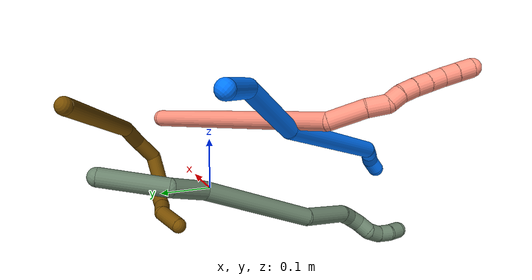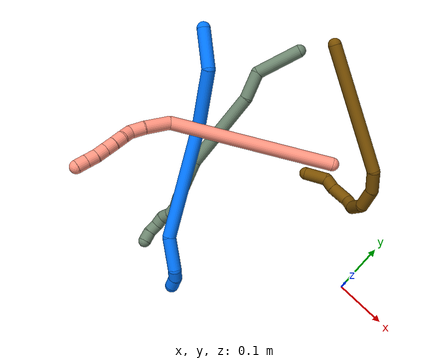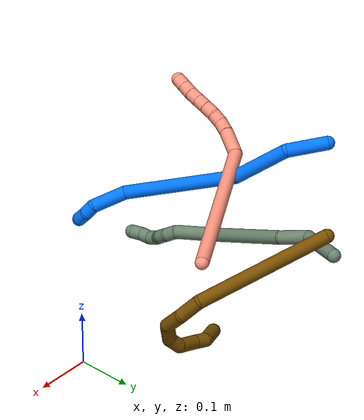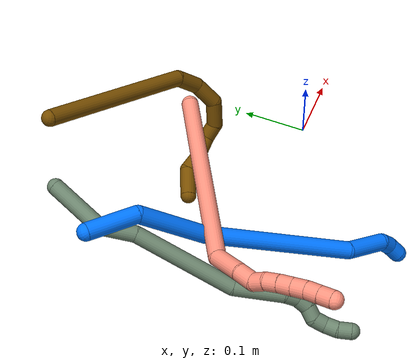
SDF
<sdf version="1.7">
 <world name="default">
  <model name="12">
   <static>0</static>
   <link name="12">
    <collision name="collision-cylinder-e_1_1_4">
     <pose>0.015257 0.040248 -0.11369 -2.80135 0.12584 -0.703056</pose>
     <geometry><cylinder><radius>0.0125</radius><length>0.24313</length></cylinder></geometry>
     <surface>
      <friction><ode><mu>1.16</mu><mu2>1.16</mu2><slip1>0</slip1><slip2>0</slip2></ode></friction>
      <contact><ode><kp>1e+06</kp><kd>1</kd><max_vel>0</max_vel><min_depth>0.001</min_depth></ode></contact>
     </surface>
    </collision>
    <visual name="visual-cylinder-e_1_1_4">
     <pose>0.015257 0.040248 -0.11369 -2.80135 0.12584 -0.703056</pose>
     <geometry><cylinder><radius>0.0125</radius><length>0.24313</length></cylinder></geometry>
     <material><ambient>0.466667 0.301961 0 1</ambient></material>
    </visual>
    <collision name="collision-cylinder-e_2_4_5">
     <pose>0.026197 0.079547 -0.247616 3.0948 -0.210003 -2.70463</pose>
     <geometry><cylinder><radius>0.0125</radius><length>0.041426</length></cylinder></geometry>
     <surface>
      <friction><ode><mu>1.16</mu><mu2>1.16</mu2><slip1>0</slip1><slip2>0</slip2></ode></friction>
      <contact><ode><kp>1e+06</kp><kd>1</kd><max_vel>0</max_vel><min_depth>0.001</min_depth></ode></contact>
     </surface>
    </collision>
    <visual name="visual-cylinder-e_2_4_5">
     <pose>0.026197 0.079547 -0.247616 3.0948 -0.210003 -2.70463</pose>
     <geometry><cylinder><radius>0.0125</radius><length>0.041426</length></cylinder></geometry>
     <material><ambient>0.466667 0.301961 0 1</ambient></material>
    </visual>
    <collision name="collision-cylinder-e_3_5_6">
     <pose>0.016014 0.069507 -0.285265 2.66038 -0.290145 -1.07413</pose>
     <geometry><cylinder><radius>0.0125</radius><length>0.041003</length></cylinder></geometry>
     <surface>
      <friction><ode><mu>1.16</mu><mu2>1.16</mu2><slip1>0</slip1><slip2>0</slip2></ode></friction>
      <contact><ode><kp>1e+06</kp><kd>1</kd><max_vel>0</max_vel><min_depth>0.001</min_depth></ode></contact>
     </surface>
    </collision>
    <visual name="visual-cylinder-e_3_5_6">
     <pose>0.016014 0.069507 -0.285265 2.66038 -0.290145 -1.07413</pose>
     <geometry><cylinder><radius>0.0125</radius><length>0.041003</length></cylinder></geometry>
     <material><ambient>0.466667 0.301961 0 1</ambient></material>
    </visual>
    <collision name="collision-cylinder-e_4_6_7">
     <pose>-0.006012 0.050536 -0.31076 2.25641 -0.902325 -1.59279</pose>
     <geometry><cylinder><radius>0.0125</radius><length>0.041185</length></cylinder></geometry>
     <surface>
      <friction><ode><mu>1.16</mu><mu2>1.16</mu2><slip1>0</slip1><slip2>0</slip2></ode></friction>
      <contact><ode><kp>1e+06</kp><kd>1</kd><max_vel>0</max_vel><min_depth>0.001</min_depth></ode></contact>
     </surface>
    </collision>
    <visual name="visual-cylinder-e_4_6_7">
     <pose>-0.006012 0.050536 -0.31076 2.25641 -0.902325 -1.59279</pose>
     <geometry><cylinder><radius>0.0125</radius><length>0.041185</length></cylinder></geometry>
     <material><ambient>0.466667 0.301961 0 1</ambient></material>
    </visual>
    <collision name="collision-cylinder-e_5_7_8">
     <pose>-0.033732 0.035492 -0.316284 1.11107 -1.10825 -0.733481</pose>
     <geometry><cylinder><radius>0.0125</radius><length>0.025833</length></cylinder></geometry>
     <surface>
      <friction><ode><mu>1.16</mu><mu2>1.16</mu2><slip1>0</slip1><slip2>0</slip2></ode></friction>
      <contact><ode><kp>1e+06</kp><kd>1</kd><max_vel>0</max_vel><min_depth>0.001</min_depth></ode></contact>
     </surface>
    </collision>
    <visual name="visual-cylinder-e_5_7_8">
     <pose>-0.033732 0.035492 -0.316284 1.11107 -1.10825 -0.733481</pose>
     <geometry><cylinder><radius>0.0125</radius><length>0.025833</length></cylinder></geometry>
     <material><ambient>0.466667 0.301961 0 1</ambient></material>
    </visual>
    <collision name="collision-cylinder-e_6_8_9">
     <pose>-0.054807 0.015076 -0.305028 1.05248 -0.4967 -0.2925</pose>
     <geometry><cylinder><radius>0.0125</radius><length>0.03994</length></cylinder></geometry>
     <surface>
      <friction><ode><mu>1.16</mu><mu2>1.16</mu2><slip1>0</slip1><slip2>0</slip2></ode></friction>
      <contact><ode><kp>1e+06</kp><kd>1</kd><max_vel>0</max_vel><min_depth>0.001</min_depth></ode></contact>
     </surface>
    </collision>
    <visual name="visual-cylinder-e_6_8_9">
     <pose>-0.054807 0.015076 -0.305028 1.05248 -0.4967 -0.2925</pose>
     <geometry><cylinder><radius>0.0125</radius><length>0.03994</length></cylinder></geometry>
     <material><ambient>0.466667 0.301961 0 1</ambient></material>
    </visual>
    <collision name="collision-cylinder-e_7_9_10">
     <pose>-0.069938 -0.007407 -0.28919 0.791811 -0.504718 -0.214726</pose>
     <geometry><cylinder><radius>0.0125</radius><length>0.023221</length></cylinder></geometry>
     <surface>
      <friction><ode><mu>1.16</mu><mu2>1.16</mu2><slip1>0</slip1><slip2>0</slip2></ode></friction>
      <contact><ode><kp>1e+06</kp><kd>1</kd><max_vel>0</max_vel><min_depth>0.001</min_depth></ode></contact>
     </surface>
    </collision>
    <visual name="visual-cylinder-e_7_9_10">
     <pose>-0.069938 -0.007407 -0.28919 0.791811 -0.504718 -0.214726</pose>
     <geometry><cylinder><radius>0.0125</radius><length>0.023221</length></cylinder></geometry>
     <material><ambient>0.466667 0.301961 0 1</ambient></material>
    </visual>
    <collision name="collision-cylinder-e_8_10_2">
     <pose>-0.080086 -0.036008 -0.2785 1.40616 -0.206328 -0.175053</pose>
     <geometry><cylinder><radius>0.0125</radius><length>0.044262</length></cylinder></geometry>
     <surface>
      <friction><ode><mu>1.16</mu><mu2>1.16</mu2><slip1>0</slip1><slip2>0</slip2></ode></friction>
      <contact><ode><kp>1e+06</kp><kd>1</kd><max_vel>0</max_vel><min_depth>0.001</min_depth></ode></contact>
     </surface>
    </collision>
    <visual name="visual-cylinder-e_8_10_2">
     <pose>-0.080086 -0.036008 -0.2785 1.40616 -0.206328 -0.175053</pose>
     <geometry><cylinder><radius>0.0125</radius><length>0.044262</length></cylinder></geometry>
     <material><ambient>0.466667 0.301961 0 1</ambient></material>
    </visual>
    <collision name="collision-sphere-2">
     <pose>-0.08462 -0.057376 -0.27495 0 -0 0</pose>
     <geometry><sphere><radius>0.0125</radius></sphere></geometry>
     <surface>
      <friction><ode><mu>1.16</mu><mu2>1.16</mu2><slip1>0</slip1><slip2>0</slip2></ode></friction>
      <contact><ode><kp>1e+06</kp><kd>1</kd><max_vel>0</max_vel><min_depth>0.001</min_depth></ode></contact>
     </surface>
    </collision>
    <visual name="visual-sphere-2">
     <pose>-0.08462 -0.057376 -0.27495 0 -0 0</pose>
     <geometry><sphere><radius>0.0125</radius></sphere></geometry>
     <material><ambient>0.466667 0.301961 0 1</ambient></material>
    </visual>
    <collision name="collision-sphere-10">
     <pose>-0.075552 -0.014639 -0.28205 0 -0 0</pose>
     <geometry><sphere><radius>0.0125</radius></sphere></geometry>
     <surface>
      <friction><ode><mu>1.16</mu><mu2>1.16</mu2><slip1>0</slip1><slip2>0</slip2></ode></friction>
      <contact><ode><kp>1e+06</kp><kd>1</kd><max_vel>0</max_vel><min_depth>0.001</min_depth></ode></contact>
     </surface>
    </collision>
    <visual name="visual-sphere-10">
     <pose>-0.075552 -0.014639 -0.28205 0 -0 0</pose>
     <geometry><sphere><radius>0.0125</radius></sphere></geometry>
     <material><ambient>0.466667 0.301961 0 1</ambient></material>
    </visual>
    <collision name="collision-sphere-9">
     <pose>-0.064323 -0.000175 -0.29633 0 -0 0</pose>
     <geometry><sphere><radius>0.0125</radius></sphere></geometry>
     <surface>
      <friction><ode><mu>1.16</mu><mu2>1.16</mu2><slip1>0</slip1><slip2>0</slip2></ode></friction>
      <contact><ode><kp>1e+06</kp><kd>1</kd><max_vel>0</max_vel><min_depth>0.001</min_depth></ode></contact>
     </surface>
    </collision>
    <visual name="visual-sphere-9">
     <pose>-0.064323 -0.000175 -0.29633 0 -0 0</pose>
     <geometry><sphere><radius>0.0125</radius></sphere></geometry>
     <material><ambient>0.466667 0.301961 0 1</ambient></material>
    </visual>
    <collision name="collision-sphere-4">
     <pose>0.030515 0.080495 -0.22738 0 -0 0</pose>
     <geometry><sphere><radius>0.0125</radius></sphere></geometry>
     <surface>
      <friction><ode><mu>1.16</mu><mu2>1.16</mu2><slip1>0</slip1><slip2>0</slip2></ode></friction>
      <contact><ode><kp>1e+06</kp><kd>1</kd><max_vel>0</max_vel><min_depth>0.001</min_depth></ode></contact>
     </surface>
    </collision>
    <visual name="visual-sphere-4">
     <pose>0.030515 0.080495 -0.22738 0 -0 0</pose>
     <geometry><sphere><radius>0.0125</radius></sphere></geometry>
     <material><ambient>0.466667 0.301961 0 1</ambient></material>
    </visual>
    <collision name="collision-sphere-1">
     <geometry><sphere><radius>0.0125</radius></sphere></geometry>
     <surface>
      <friction><ode><mu>1.16</mu><mu2>1.16</mu2><slip1>0</slip1><slip2>0</slip2></ode></friction>
      <contact><ode><kp>1e+06</kp><kd>1</kd><max_vel>0</max_vel><min_depth>0.001</min_depth></ode></contact>
     </surface>
    </collision>
    <visual name="visual-sphere-1">
     <geometry><sphere><radius>0.0125</radius></sphere></geometry>
     <material><ambient>0.466667 0.301961 0 1</ambient></material>
    </visual>
    <collision name="collision-sphere-8">
     <pose>-0.045291 0.030327 -0.313726 0 -0 0</pose>
     <geometry><sphere><radius>0.0125</radius></sphere></geometry>
     <surface>
      <friction><ode><mu>1.16</mu><mu2>1.16</mu2><slip1>0</slip1><slip2>0</slip2></ode></friction>
      <contact><ode><kp>1e+06</kp><kd>1</kd><max_vel>0</max_vel><min_depth>0.001</min_depth></ode></contact>
     </surface>
    </collision>
    <visual name="visual-sphere-8">
     <pose>-0.045291 0.030327 -0.313726 0 -0 0</pose>
     <geometry><sphere><radius>0.0125</radius></sphere></geometry>
     <material><ambient>0.466667 0.301961 0 1</ambient></material>
    </visual>
    <collision name="collision-sphere-5">
     <pose>0.021879 0.0786 -0.267852 0 -0 0</pose>
     <geometry><sphere><radius>0.0125</radius></sphere></geometry>
     <surface>
      <friction><ode><mu>1.16</mu><mu2>1.16</mu2><slip1>0</slip1><slip2>0</slip2></ode></friction>
      <contact><ode><kp>1e+06</kp><kd>1</kd><max_vel>0</max_vel><min_depth>0.001</min_depth></ode></contact>
     </surface>
    </collision>
    <visual name="visual-sphere-5">
     <pose>0.021879 0.0786 -0.267852 0 -0 0</pose>
     <geometry><sphere><radius>0.0125</radius></sphere></geometry>
     <material><ambient>0.466667 0.301961 0 1</ambient></material>
    </visual>
    <collision name="collision-sphere-6">
     <pose>0.010148 0.060415 -0.302679 0 -0 0</pose>
     <geometry><sphere><radius>0.0125</radius></sphere></geometry>
     <surface>
      <friction><ode><mu>1.16</mu><mu2>1.16</mu2><slip1>0</slip1><slip2>0</slip2></ode></friction>
      <contact><ode><kp>1e+06</kp><kd>1</kd><max_vel>0</max_vel><min_depth>0.001</min_depth></ode></contact>
     </surface>
    </collision>
    <visual name="visual-sphere-6">
     <pose>0.010148 0.060415 -0.302679 0 -0 0</pose>
     <geometry><sphere><radius>0.0125</radius></sphere></geometry>
     <material><ambient>0.466667 0.301961 0 1</ambient></material>
    </visual>
    <collision name="collision-sphere-7">
     <pose>-0.022173 0.040657 -0.318841 0 -0 0</pose>
     <geometry><sphere><radius>0.0125</radius></sphere></geometry>
     <surface>
      <friction><ode><mu>1.16</mu><mu2>1.16</mu2><slip1>0</slip1><slip2>0</slip2></ode></friction>
      <contact><ode><kp>1e+06</kp><kd>1</kd><max_vel>0</max_vel><min_depth>0.001</min_depth></ode></contact>
     </surface>
    </collision>
    <visual name="visual-sphere-7">
     <pose>-0.022173 0.040657 -0.318841 0 -0 0</pose>
     <geometry><sphere><radius>0.0125</radius></sphere></geometry>
     <material><ambient>0.466667 0.301961 0 1</ambient></material>
    </visual>
    <inertial>
     <pose>-0.006051 0.035531 -0.20358 0 -0 0</pose>
     <mass>0.5</mass>
     <inertia>
      <ixx>0.000128</ixx>
      <ixy>0</ixy>
      <ixz>0</ixz>
      <iyy>-0.001614</iyy>
      <iyz>0</iyz>
      <izz>-0.000532</izz>
     </inertia>
    </inertial>
   </link>
   <pose>-0.300576 0.286144 0.233073 0.274462 -1.01202 -1.14202</pose>
  </model>
  <model name="14">
   <static>0</static>
   <link name="14">
    <collision name="collision-cylinder-e_1_1_4">
     <pose>-0.024978 -0.021623 -0.017055 2.23864 -0.736652 -1.34454</pose>
     <geometry><cylinder><radius>0.0125</radius><length>0.074359</length></cylinder></geometry>
     <surface>
      <friction><ode><mu>1.16</mu><mu2>1.16</mu2><slip1>0</slip1><slip2>0</slip2></ode></friction>
      <contact><ode><kp>1e+06</kp><kd>1</kd><max_vel>0</max_vel><min_depth>0.001</min_depth></ode></contact>
     </surface>
    </collision>
    <visual name="visual-cylinder-e_1_1_4">
     <pose>-0.024978 -0.021623 -0.017055 2.23864 -0.736652 -1.34454</pose>
     <geometry><cylinder><radius>0.0125</radius><length>0.074359</length></cylinder></geometry>
     <material><ambient>0 0.462745 1 1</ambient></material>
    </visual>
    <collision name="collision-cylinder-e_2_4_5">
     <pose>-0.06721 -0.094364 -0.042374 1.73107 -0.321654 -0.376605</pose>
     <geometry><cylinder><radius>0.0125</radius><length>0.109162</length></cylinder></geometry>
     <surface>
      <friction><ode><mu>1.16</mu><mu2>1.16</mu2><slip1>0</slip1><slip2>0</slip2></ode></friction>
      <contact><ode><kp>1e+06</kp><kd>1</kd><max_vel>0</max_vel><min_depth>0.001</min_depth></ode></contact>
     </surface>
    </collision>
    <visual name="visual-cylinder-e_2_4_5">
     <pose>-0.06721 -0.094364 -0.042374 1.73107 -0.321654 -0.376605</pose>
     <geometry><cylinder><radius>0.0125</radius><length>0.109162</length></cylinder></geometry>
     <material><ambient>0 0.462745 1 1</ambient></material>
    </visual>
    <collision name="collision-cylinder-e_3_5_6">
     <pose>-0.118327 -0.233485 -0.099013 2.07341 -0.325217 -0.541177</pose>
     <geometry><cylinder><radius>0.0125</radius><length>0.211954</length></cylinder></geometry>
     <surface>
      <friction><ode><mu>1.16</mu><mu2>1.16</mu2><slip1>0</slip1><slip2>0</slip2></ode></friction>
      <contact><ode><kp>1e+06</kp><kd>1</kd><max_vel>0</max_vel><min_depth>0.001</min_depth></ode></contact>
     </surface>
    </collision>
    <visual name="visual-cylinder-e_3_5_6">
     <pose>-0.118327 -0.233485 -0.099013 2.07341 -0.325217 -0.541177</pose>
     <geometry><cylinder><radius>0.0125</radius><length>0.211954</length></cylinder></geometry>
     <material><ambient>0 0.462745 1 1</ambient></material>
    </visual>
    <collision name="collision-cylinder-e_4_6_7">
     <pose>-0.172795 -0.34337 -0.155256 1.91594 -0.725113 -0.989458</pose>
     <geometry><cylinder><radius>0.0125</radius><length>0.062142</length></cylinder></geometry>
     <surface>
      <friction><ode><mu>1.16</mu><mu2>1.16</mu2><slip1>0</slip1><slip2>0</slip2></ode></friction>
      <contact><ode><kp>1e+06</kp><kd>1</kd><max_vel>0</max_vel><min_depth>0.001</min_depth></ode></contact>
     </surface>
    </collision>
    <visual name="visual-cylinder-e_4_6_7">
     <pose>-0.172795 -0.34337 -0.155256 1.91594 -0.725113 -0.989458</pose>
     <geometry><cylinder><radius>0.0125</radius><length>0.062142</length></cylinder></geometry>
     <material><ambient>0 0.462745 1 1</ambient></material>
    </visual>
    <collision name="collision-cylinder-e_5_7_8">
     <pose>-0.197437 -0.374613 -0.161988 1.45009 -0.404404 -0.359362</pose>
     <geometry><cylinder><radius>0.0125</radius><length>0.02051</length></cylinder></geometry>
     <surface>
      <friction><ode><mu>1.16</mu><mu2>1.16</mu2><slip1>0</slip1><slip2>0</slip2></ode></friction>
      <contact><ode><kp>1e+06</kp><kd>1</kd><max_vel>0</max_vel><min_depth>0.001</min_depth></ode></contact>
     </surface>
    </collision>
    <visual name="visual-cylinder-e_5_7_8">
     <pose>-0.197437 -0.374613 -0.161988 1.45009 -0.404404 -0.359362</pose>
     <geometry><cylinder><radius>0.0125</radius><length>0.02051</length></cylinder></geometry>
     <material><ambient>0 0.462745 1 1</ambient></material>
    </visual>
    <collision name="collision-cylinder-e_6_8_2">
     <pose>-0.201994 -0.394892 -0.160576 1.54547 -0.047781 -0.046586</pose>
     <geometry><cylinder><radius>0.0125</radius><length>0.021872</length></cylinder></geometry>
     <surface>
      <friction><ode><mu>1.16</mu><mu2>1.16</mu2><slip1>0</slip1><slip2>0</slip2></ode></friction>
      <contact><ode><kp>1e+06</kp><kd>1</kd><max_vel>0</max_vel><min_depth>0.001</min_depth></ode></contact>
     </surface>
    </collision>
    <visual name="visual-cylinder-e_6_8_2">
     <pose>-0.201994 -0.394892 -0.160576 1.54547 -0.047781 -0.046586</pose>
     <geometry><cylinder><radius>0.0125</radius><length>0.021872</length></cylinder></geometry>
     <material><ambient>0 0.462745 1 1</ambient></material>
    </visual>
    <collision name="collision-sphere-2">
     <pose>-0.202517 -0.405812 -0.1603 0 -0 0</pose>
     <geometry><sphere><radius>0.0125</radius></sphere></geometry>
     <surface>
      <friction><ode><mu>1.16</mu><mu2>1.16</mu2><slip1>0</slip1><slip2>0</slip2></ode></friction>
      <contact><ode><kp>1e+06</kp><kd>1</kd><max_vel>0</max_vel><min_depth>0.001</min_depth></ode></contact>
     </surface>
    </collision>
    <visual name="visual-sphere-2">
     <pose>-0.202517 -0.405812 -0.1603 0 -0 0</pose>
     <geometry><sphere><radius>0.0125</radius></sphere></geometry>
     <material><ambient>0 0.462745 1 1</ambient></material>
    </visual>
    <collision name="collision-sphere-4">
     <pose>-0.049955 -0.043246 -0.03411 0 -0 0</pose>
     <geometry><sphere><radius>0.0125</radius></sphere></geometry>
     <surface>
      <friction><ode><mu>1.16</mu><mu2>1.16</mu2><slip1>0</slip1><slip2>0</slip2></ode></friction>
      <contact><ode><kp>1e+06</kp><kd>1</kd><max_vel>0</max_vel><min_depth>0.001</min_depth></ode></contact>
     </surface>
    </collision>
    <visual name="visual-sphere-4">
     <pose>-0.049955 -0.043246 -0.03411 0 -0 0</pose>
     <geometry><sphere><radius>0.0125</radius></sphere></geometry>
     <material><ambient>0 0.462745 1 1</ambient></material>
    </visual>
    <collision name="collision-sphere-1">
     <geometry><sphere><radius>0.0125</radius></sphere></geometry>
     <surface>
      <friction><ode><mu>1.16</mu><mu2>1.16</mu2><slip1>0</slip1><slip2>0</slip2></ode></friction>
      <contact><ode><kp>1e+06</kp><kd>1</kd><max_vel>0</max_vel><min_depth>0.001</min_depth></ode></contact>
     </surface>
    </collision>
    <visual name="visual-sphere-1">
     <geometry><sphere><radius>0.0125</radius></sphere></geometry>
     <material><ambient>0 0.462745 1 1</ambient></material>
    </visual>
    <collision name="collision-sphere-8">
     <pose>-0.201472 -0.383972 -0.160853 0 -0 0</pose>
     <geometry><sphere><radius>0.0125</radius></sphere></geometry>
     <surface>
      <friction><ode><mu>1.16</mu><mu2>1.16</mu2><slip1>0</slip1><slip2>0</slip2></ode></friction>
      <contact><ode><kp>1e+06</kp><kd>1</kd><max_vel>0</max_vel><min_depth>0.001</min_depth></ode></contact>
     </surface>
    </collision>
    <visual name="visual-sphere-8">
     <pose>-0.201472 -0.383972 -0.160853 0 -0 0</pose>
     <geometry><sphere><radius>0.0125</radius></sphere></geometry>
     <material><ambient>0 0.462745 1 1</ambient></material>
    </visual>
    <collision name="collision-sphere-5">
     <pose>-0.084465 -0.145482 -0.050638 0 -0 0</pose>
     <geometry><sphere><radius>0.0125</radius></sphere></geometry>
     <surface>
      <friction><ode><mu>1.16</mu><mu2>1.16</mu2><slip1>0</slip1><slip2>0</slip2></ode></friction>
      <contact><ode><kp>1e+06</kp><kd>1</kd><max_vel>0</max_vel><min_depth>0.001</min_depth></ode></contact>
     </surface>
    </collision>
    <visual name="visual-sphere-5">
     <pose>-0.084465 -0.145482 -0.050638 0 -0 0</pose>
     <geometry><sphere><radius>0.0125</radius></sphere></geometry>
     <material><ambient>0 0.462745 1 1</ambient></material>
    </visual>
    <collision name="collision-sphere-6">
     <pose>-0.152188 -0.321487 -0.147388 0 -0 0</pose>
     <geometry><sphere><radius>0.0125</radius></sphere></geometry>
     <surface>
      <friction><ode><mu>1.16</mu><mu2>1.16</mu2><slip1>0</slip1><slip2>0</slip2></ode></friction>
      <contact><ode><kp>1e+06</kp><kd>1</kd><max_vel>0</max_vel><min_depth>0.001</min_depth></ode></contact>
     </surface>
    </collision>
    <visual name="visual-sphere-6">
     <pose>-0.152188 -0.321487 -0.147388 0 -0 0</pose>
     <geometry><sphere><radius>0.0125</radius></sphere></geometry>
     <material><ambient>0 0.462745 1 1</ambient></material>
    </visual>
    <collision name="collision-sphere-7">
     <pose>-0.193402 -0.365253 -0.163123 0 -0 0</pose>
     <geometry><sphere><radius>0.0125</radius></sphere></geometry>
     <surface>
      <friction><ode><mu>1.16</mu><mu2>1.16</mu2><slip1>0</slip1><slip2>0</slip2></ode></friction>
      <contact><ode><kp>1e+06</kp><kd>1</kd><max_vel>0</max_vel><min_depth>0.001</min_depth></ode></contact>
     </surface>
    </collision>
    <visual name="visual-sphere-7">
     <pose>-0.193402 -0.365253 -0.163123 0 -0 0</pose>
     <geometry><sphere><radius>0.0125</radius></sphere></geometry>
     <material><ambient>0 0.462745 1 1</ambient></material>
    </visual>
    <inertial>
     <pose>-0.106959 -0.198111 -0.086725 0 -0 0</pose>
     <mass>0.5</mass>
     <inertia>
      <ixx>0.000281</ixx>
      <ixy>0</ixy>
      <ixz>0</ixz>
      <iyy>-0.000701</iyy>
      <iyz>0</iyz>
      <izz>0.001132</izz>
     </inertia>
    </inertial>
   </link>
   <pose>-0.484978 0.137563 0.271442 2.31611 -0.006815 -3.01111</pose>
  </model>
  <model name="16">
   <static>0</static>
   <link name="16">
    <collision name="collision-cylinder-e_1_1_4">
     <pose>-0.032998 -0.005657 0.148069 0.038188 -0.219118 -0.004201</pose>
     <geometry><cylinder><radius>0.0125</radius><length>0.303614</length></cylinder></geometry>
     <surface>
      <friction><ode><mu>1.16</mu><mu2>1.16</mu2><slip1>0</slip1><slip2>0</slip2></ode></friction>
      <contact><ode><kp>1e+06</kp><kd>1</kd><max_vel>0</max_vel><min_depth>0.001</min_depth></ode></contact>
     </surface>
    </collision>
    <visual name="visual-cylinder-e_1_1_4">
     <pose>-0.032998 -0.005657 0.148069 0.038188 -0.219118 -0.004201</pose>
     <geometry><cylinder><radius>0.0125</radius><length>0.303614</length></cylinder></geometry>
     <material><ambient>1 0.576471 0.494118 1</ambient></material>
    </visual>
    <collision name="collision-cylinder-e_2_4_5">
     <pose>-0.079988 -0.021577 0.313676 0.52945 -0.603004 -0.168209</pose>
     <geometry><cylinder><radius>0.0125</radius><length>0.049343</length></cylinder></geometry>
     <surface>
      <friction><ode><mu>1.16</mu><mu2>1.16</mu2><slip1>0</slip1><slip2>0</slip2></ode></friction>
      <contact><ode><kp>1e+06</kp><kd>1</kd><max_vel>0</max_vel><min_depth>0.001</min_depth></ode></contact>
     </surface>
    </collision>
    <visual name="visual-cylinder-e_2_4_5">
     <pose>-0.079988 -0.021577 0.313676 0.52945 -0.603004 -0.168209</pose>
     <geometry><cylinder><radius>0.0125</radius><length>0.049343</length></cylinder></geometry>
     <material><ambient>1 0.576471 0.494118 1</ambient></material>
    </visual>
    <collision name="collision-cylinder-e_3_5_6">
     <pose>-0.103032 -0.035831 0.340418 0.409086 -0.734126 -0.159183</pose>
     <geometry><cylinder><radius>0.0125</radius><length>0.027024</length></cylinder></geometry>
     <surface>
      <friction><ode><mu>1.16</mu><mu2>1.16</mu2><slip1>0</slip1><slip2>0</slip2></ode></friction>
      <contact><ode><kp>1e+06</kp><kd>1</kd><max_vel>0</max_vel><min_depth>0.001</min_depth></ode></contact>
     </surface>
    </collision>
    <visual name="visual-cylinder-e_3_5_6">
     <pose>-0.103032 -0.035831 0.340418 0.409086 -0.734126 -0.159183</pose>
     <geometry><cylinder><radius>0.0125</radius><length>0.027024</length></cylinder></geometry>
     <material><ambient>1 0.576471 0.494118 1</ambient></material>
    </visual>
    <collision name="collision-cylinder-e_4_6_7">
     <pose>-0.118675 -0.046706 0.352677 1.15321 -0.718794 -0.479285</pose>
     <geometry><cylinder><radius>0.0125</radius><length>0.020018</length></cylinder></geometry>
     <surface>
      <friction><ode><mu>1.16</mu><mu2>1.16</mu2><slip1>0</slip1><slip2>0</slip2></ode></friction>
      <contact><ode><kp>1e+06</kp><kd>1</kd><max_vel>0</max_vel><min_depth>0.001</min_depth></ode></contact>
     </surface>
    </collision>
    <visual name="visual-cylinder-e_4_6_7">
     <pose>-0.118675 -0.046706 0.352677 1.15321 -0.718794 -0.479285</pose>
     <geometry><cylinder><radius>0.0125</radius><length>0.020018</length></cylinder></geometry>
     <material><ambient>1 0.576471 0.494118 1</ambient></material>
    </visual>
    <collision name="collision-cylinder-e_5_7_8">
     <pose>-0.133151 -0.058564 0.359349 0.941862 -0.9085 -0.487351</pose>
     <geometry><cylinder><radius>0.0125</radius><length>0.02</length></cylinder></geometry>
     <surface>
      <friction><ode><mu>1.16</mu><mu2>1.16</mu2><slip1>0</slip1><slip2>0</slip2></ode></friction>
      <contact><ode><kp>1e+06</kp><kd>1</kd><max_vel>0</max_vel><min_depth>0.001</min_depth></ode></contact>
     </surface>
    </collision>
    <visual name="visual-cylinder-e_5_7_8">
     <pose>-0.133151 -0.058564 0.359349 0.941862 -0.9085 -0.487351</pose>
     <geometry><cylinder><radius>0.0125</radius><length>0.02</length></cylinder></geometry>
     <material><ambient>1 0.576471 0.494118 1</ambient></material>
    </visual>
    <collision name="collision-cylinder-e_6_8_9">
     <pose>-0.149137 -0.067867 0.366923 0.830544 -0.944118 -0.442843</pose>
     <geometry><cylinder><radius>0.0125</radius><length>0.020001</length></cylinder></geometry>
     <surface>
      <friction><ode><mu>1.16</mu><mu2>1.16</mu2><slip1>0</slip1><slip2>0</slip2></ode></friction>
      <contact><ode><kp>1e+06</kp><kd>1</kd><max_vel>0</max_vel><min_depth>0.001</min_depth></ode></contact>
     </surface>
    </collision>
    <visual name="visual-cylinder-e_6_8_9">
     <pose>-0.149137 -0.067867 0.366923 0.830544 -0.944118 -0.442843</pose>
     <geometry><cylinder><radius>0.0125</radius><length>0.020001</length></cylinder></geometry>
     <material><ambient>1 0.576471 0.494118 1</ambient></material>
    </visual>
    <collision name="collision-cylinder-e_7_9_10">
     <pose>-0.16533 -0.076556 0.374817 0.836038 -0.942838 -0.445353</pose>
     <geometry><cylinder><radius>0.0125</radius><length>0.02</length></cylinder></geometry>
     <surface>
      <friction><ode><mu>1.16</mu><mu2>1.16</mu2><slip1>0</slip1><slip2>0</slip2></ode></friction>
      <contact><ode><kp>1e+06</kp><kd>1</kd><max_vel>0</max_vel><min_depth>0.001</min_depth></ode></contact>
     </surface>
    </collision>
    <visual name="visual-cylinder-e_7_9_10">
     <pose>-0.16533 -0.076556 0.374817 0.836038 -0.942838 -0.445353</pose>
     <geometry><cylinder><radius>0.0125</radius><length>0.02</length></cylinder></geometry>
     <material><ambient>1 0.576471 0.494118 1</ambient></material>
    </visual>
    <collision name="collision-cylinder-e_8_10_11">
     <pose>-0.180992 -0.084971 0.383879 0.669608 -0.858703 -0.31591</pose>
     <geometry><cylinder><radius>0.0125</radius><length>0.02</length></cylinder></geometry>
     <surface>
      <friction><ode><mu>1.16</mu><mu2>1.16</mu2><slip1>0</slip1><slip2>0</slip2></ode></friction>
      <contact><ode><kp>1e+06</kp><kd>1</kd><max_vel>0</max_vel><min_depth>0.001</min_depth></ode></contact>
     </surface>
    </collision>
    <visual name="visual-cylinder-e_8_10_11">
     <pose>-0.180992 -0.084971 0.383879 0.669608 -0.858703 -0.31591</pose>
     <geometry><cylinder><radius>0.0125</radius><length>0.02</length></cylinder></geometry>
     <material><ambient>1 0.576471 0.494118 1</ambient></material>
    </visual>
    <collision name="collision-cylinder-e_9_11_2">
     <pose>-0.196224 -0.093109 0.393965 0.688312 -0.872896 -0.331305</pose>
     <geometry><cylinder><radius>0.0125</radius><length>0.02</length></cylinder></geometry>
     <surface>
      <friction><ode><mu>1.16</mu><mu2>1.16</mu2><slip1>0</slip1><slip2>0</slip2></ode></friction>
      <contact><ode><kp>1e+06</kp><kd>1</kd><max_vel>0</max_vel><min_depth>0.001</min_depth></ode></contact>
     </surface>
    </collision>
    <visual name="visual-cylinder-e_9_11_2">
     <pose>-0.196224 -0.093109 0.393965 0.688312 -0.872896 -0.331305</pose>
     <geometry><cylinder><radius>0.0125</radius><length>0.02</length></cylinder></geometry>
     <material><ambient>1 0.576471 0.494118 1</ambient></material>
    </visual>
    <collision name="collision-sphere-2">
     <pose>-0.203886 -0.097191 0.398928 0 -0 0</pose>
     <geometry><sphere><radius>0.0125</radius></sphere></geometry>
     <surface>
      <friction><ode><mu>1.16</mu><mu2>1.16</mu2><slip1>0</slip1><slip2>0</slip2></ode></friction>
      <contact><ode><kp>1e+06</kp><kd>1</kd><max_vel>0</max_vel><min_depth>0.001</min_depth></ode></contact>
     </surface>
    </collision>
    <visual name="visual-sphere-2">
     <pose>-0.203886 -0.097191 0.398928 0 -0 0</pose>
     <geometry><sphere><radius>0.0125</radius></sphere></geometry>
     <material><ambient>1 0.576471 0.494118 1</ambient></material>
    </visual>
    <collision name="collision-sphere-11">
     <pose>-0.188562 -0.089027 0.389002 0 -0 0</pose>
     <geometry><sphere><radius>0.0125</radius></sphere></geometry>
     <surface>
      <friction><ode><mu>1.16</mu><mu2>1.16</mu2><slip1>0</slip1><slip2>0</slip2></ode></friction>
      <contact><ode><kp>1e+06</kp><kd>1</kd><max_vel>0</max_vel><min_depth>0.001</min_depth></ode></contact>
     </surface>
    </collision>
    <visual name="visual-sphere-11">
     <pose>-0.188562 -0.089027 0.389002 0 -0 0</pose>
     <geometry><sphere><radius>0.0125</radius></sphere></geometry>
     <material><ambient>1 0.576471 0.494118 1</ambient></material>
    </visual>
    <collision name="collision-sphere-10">
     <pose>-0.173422 -0.080915 0.378756 0 -0 0</pose>
     <geometry><sphere><radius>0.0125</radius></sphere></geometry>
     <surface>
      <friction><ode><mu>1.16</mu><mu2>1.16</mu2><slip1>0</slip1><slip2>0</slip2></ode></friction>
      <contact><ode><kp>1e+06</kp><kd>1</kd><max_vel>0</max_vel><min_depth>0.001</min_depth></ode></contact>
     </surface>
    </collision>
    <visual name="visual-sphere-10">
     <pose>-0.173422 -0.080915 0.378756 0 -0 0</pose>
     <geometry><sphere><radius>0.0125</radius></sphere></geometry>
     <material><ambient>1 0.576471 0.494118 1</ambient></material>
    </visual>
    <collision name="collision-sphere-9">
     <pose>-0.157237 -0.072197 0.370878 0 -0 0</pose>
     <geometry><sphere><radius>0.0125</radius></sphere></geometry>
     <surface>
      <friction><ode><mu>1.16</mu><mu2>1.16</mu2><slip1>0</slip1><slip2>0</slip2></ode></friction>
      <contact><ode><kp>1e+06</kp><kd>1</kd><max_vel>0</max_vel><min_depth>0.001</min_depth></ode></contact>
     </surface>
    </collision>
    <visual name="visual-sphere-9">
     <pose>-0.157237 -0.072197 0.370878 0 -0 0</pose>
     <geometry><sphere><radius>0.0125</radius></sphere></geometry>
     <material><ambient>1 0.576471 0.494118 1</ambient></material>
    </visual>
    <collision name="collision-sphere-4">
     <pose>-0.065996 -0.011314 0.296138 0 -0 0</pose>
     <geometry><sphere><radius>0.0125</radius></sphere></geometry>
     <surface>
      <friction><ode><mu>1.16</mu><mu2>1.16</mu2><slip1>0</slip1><slip2>0</slip2></ode></friction>
      <contact><ode><kp>1e+06</kp><kd>1</kd><max_vel>0</max_vel><min_depth>0.001</min_depth></ode></contact>
     </surface>
    </collision>
    <visual name="visual-sphere-4">
     <pose>-0.065996 -0.011314 0.296138 0 -0 0</pose>
     <geometry><sphere><radius>0.0125</radius></sphere></geometry>
     <material><ambient>1 0.576471 0.494118 1</ambient></material>
    </visual>
    <collision name="collision-sphere-1">
     <geometry><sphere><radius>0.0125</radius></sphere></geometry>
     <surface>
      <friction><ode><mu>1.16</mu><mu2>1.16</mu2><slip1>0</slip1><slip2>0</slip2></ode></friction>
      <contact><ode><kp>1e+06</kp><kd>1</kd><max_vel>0</max_vel><min_depth>0.001</min_depth></ode></contact>
     </surface>
    </collision>
    <visual name="visual-sphere-1">
     <geometry><sphere><radius>0.0125</radius></sphere></geometry>
     <material><ambient>1 0.576471 0.494118 1</ambient></material>
    </visual>
    <collision name="collision-sphere-8">
     <pose>-0.141037 -0.063537 0.362967 0 -0 0</pose>
     <geometry><sphere><radius>0.0125</radius></sphere></geometry>
     <surface>
      <friction><ode><mu>1.16</mu><mu2>1.16</mu2><slip1>0</slip1><slip2>0</slip2></ode></friction>
      <contact><ode><kp>1e+06</kp><kd>1</kd><max_vel>0</max_vel><min_depth>0.001</min_depth></ode></contact>
     </surface>
    </collision>
    <visual name="visual-sphere-8">
     <pose>-0.141037 -0.063537 0.362967 0 -0 0</pose>
     <geometry><sphere><radius>0.0125</radius></sphere></geometry>
     <material><ambient>1 0.576471 0.494118 1</ambient></material>
    </visual>
    <collision name="collision-sphere-5">
     <pose>-0.09398 -0.03184 0.331214 0 -0 0</pose>
     <geometry><sphere><radius>0.0125</radius></sphere></geometry>
     <surface>
      <friction><ode><mu>1.16</mu><mu2>1.16</mu2><slip1>0</slip1><slip2>0</slip2></ode></friction>
      <contact><ode><kp>1e+06</kp><kd>1</kd><max_vel>0</max_vel><min_depth>0.001</min_depth></ode></contact>
     </surface>
    </collision>
    <visual name="visual-sphere-5">
     <pose>-0.09398 -0.03184 0.331214 0 -0 0</pose>
     <geometry><sphere><radius>0.0125</radius></sphere></geometry>
     <material><ambient>1 0.576471 0.494118 1</ambient></material>
    </visual>
    <collision name="collision-sphere-6">
     <pose>-0.112084 -0.039821 0.349622 0 -0 0</pose>
     <geometry><sphere><radius>0.0125</radius></sphere></geometry>
     <surface>
      <friction><ode><mu>1.16</mu><mu2>1.16</mu2><slip1>0</slip1><slip2>0</slip2></ode></friction>
      <contact><ode><kp>1e+06</kp><kd>1</kd><max_vel>0</max_vel><min_depth>0.001</min_depth></ode></contact>
     </surface>
    </collision>
    <visual name="visual-sphere-6">
     <pose>-0.112084 -0.039821 0.349622 0 -0 0</pose>
     <geometry><sphere><radius>0.0125</radius></sphere></geometry>
     <material><ambient>1 0.576471 0.494118 1</ambient></material>
    </visual>
    <collision name="collision-sphere-7">
     <pose>-0.125265 -0.053592 0.355732 0 -0 0</pose>
     <geometry><sphere><radius>0.0125</radius></sphere></geometry>
     <surface>
      <friction><ode><mu>1.16</mu><mu2>1.16</mu2><slip1>0</slip1><slip2>0</slip2></ode></friction>
      <contact><ode><kp>1e+06</kp><kd>1</kd><max_vel>0</max_vel><min_depth>0.001</min_depth></ode></contact>
     </surface>
    </collision>
    <visual name="visual-sphere-7">
     <pose>-0.125265 -0.053592 0.355732 0 -0 0</pose>
     <geometry><sphere><radius>0.0125</radius></sphere></geometry>
     <material><ambient>1 0.576471 0.494118 1</ambient></material>
    </visual>
    <inertial>
     <pose>-0.071245 -0.024614 0.228544 0 -0 0</pose>
     <mass>0.5</mass>
     <inertia>
      <ixx>0.002275</ixx>
      <ixy>0</ixy>
      <ixz>0</ixz>
      <iyy>0.002342</iyy>
      <iyz>0</iyz>
      <izz>0.000653</izz>
     </inertia>
    </inertial>
   </link>
   <pose>-0.160619 0.12973 0.180906 -1.44041 -0.230132 1.83689</pose>
  </model>
  <model name="17">
   <static>0</static>
   <link name="17">
    <collision name="collision-cylinder-e_1_1_4">
     <pose>0.036402 0.013574 -0.022519 -2.59914 0.945259 -2.14531</pose>
     <geometry><cylinder><radius>0.0125</radius><length>0.08981</length></cylinder></geometry>
     <surface>
      <friction><ode><mu>1.16</mu><mu2>1.16</mu2><slip1>0</slip1><slip2>0</slip2></ode></friction>
      <contact><ode><kp>1e+06</kp><kd>1</kd><max_vel>0</max_vel><min_depth>0.001</min_depth></ode></contact>
     </surface>
    </collision>
    <visual name="visual-cylinder-e_1_1_4">
     <pose>0.036402 0.013574 -0.022519 -2.59914 0.945259 -2.14531</pose>
     <geometry><cylinder><radius>0.0125</radius><length>0.08981</length></cylinder></geometry>
     <material><ambient>0.415686 0.509804 0.423529 1</ambient></material>
    </visual>
    <collision name="collision-cylinder-e_2_4_5">
     <pose>0.088306 0.020241 -0.06591 2.82203 0.614102 2.20114</pose>
     <geometry><cylinder><radius>0.0125</radius><length>0.053801</length></cylinder></geometry>
     <surface>
      <friction><ode><mu>1.16</mu><mu2>1.16</mu2><slip1>0</slip1><slip2>0</slip2></ode></friction>
      <contact><ode><kp>1e+06</kp><kd>1</kd><max_vel>0</max_vel><min_depth>0.001</min_depth></ode></contact>
     </surface>
    </collision>
    <visual name="visual-cylinder-e_2_4_5">
     <pose>0.088306 0.020241 -0.06591 2.82203 0.614102 2.20114</pose>
     <geometry><cylinder><radius>0.0125</radius><length>0.053801</length></cylinder></geometry>
     <material><ambient>0.415686 0.509804 0.423529 1</ambient></material>
    </visual>
    <collision name="collision-cylinder-e_3_5_6">
     <pose>0.165925 0.005039 -0.135794 2.97393 0.89592 2.79537</pose>
     <geometry><cylinder><radius>0.0125</radius><length>0.159117</length></cylinder></geometry>
     <surface>
      <friction><ode><mu>1.16</mu><mu2>1.16</mu2><slip1>0</slip1><slip2>0</slip2></ode></friction>
      <contact><ode><kp>1e+06</kp><kd>1</kd><max_vel>0</max_vel><min_depth>0.001</min_depth></ode></contact>
     </surface>
    </collision>
    <visual name="visual-cylinder-e_3_5_6">
     <pose>0.165925 0.005039 -0.135794 2.97393 0.89592 2.79537</pose>
     <geometry><cylinder><radius>0.0125</radius><length>0.159117</length></cylinder></geometry>
     <material><ambient>0.415686 0.509804 0.423529 1</ambient></material>
    </visual>
    <collision name="collision-cylinder-e_4_6_7">
     <pose>0.247636 -0.010951 -0.216537 2.90369 0.54049 2.32698</pose>
     <geometry><cylinder><radius>0.0125</radius><length>0.076157</length></cylinder></geometry>
     <surface>
      <friction><ode><mu>1.16</mu><mu2>1.16</mu2><slip1>0</slip1><slip2>0</slip2></ode></friction>
      <contact><ode><kp>1e+06</kp><kd>1</kd><max_vel>0</max_vel><min_depth>0.001</min_depth></ode></contact>
     </surface>
    </collision>
    <visual name="visual-cylinder-e_4_6_7">
     <pose>0.247636 -0.010951 -0.216537 2.90369 0.54049 2.32698</pose>
     <geometry><cylinder><radius>0.0125</radius><length>0.076157</length></cylinder></geometry>
     <material><ambient>0.415686 0.509804 0.423529 1</ambient></material>
    </visual>
    <collision name="collision-cylinder-e_5_7_8">
     <pose>0.273862 -0.023289 -0.254829 2.52576 0.689866 1.69249</pose>
     <geometry><cylinder><radius>0.0125</radius><length>0.020842</length></cylinder></geometry>
     <surface>
      <friction><ode><mu>1.16</mu><mu2>1.16</mu2><slip1>0</slip1><slip2>0</slip2></ode></friction>
      <contact><ode><kp>1e+06</kp><kd>1</kd><max_vel>0</max_vel><min_depth>0.001</min_depth></ode></contact>
     </surface>
    </collision>
    <visual name="visual-cylinder-e_5_7_8">
     <pose>0.273862 -0.023289 -0.254829 2.52576 0.689866 1.69249</pose>
     <geometry><cylinder><radius>0.0125</radius><length>0.020842</length></cylinder></geometry>
     <material><ambient>0.415686 0.509804 0.423529 1</ambient></material>
    </visual>
    <collision name="collision-cylinder-e_6_8_9">
     <pose>0.289342 -0.030213 -0.265726 2.65732 1.06518 2.34797</pose>
     <geometry><cylinder><radius>0.0125</radius><length>0.020227</length></cylinder></geometry>
     <surface>
      <friction><ode><mu>1.16</mu><mu2>1.16</mu2><slip1>0</slip1><slip2>0</slip2></ode></friction>
      <contact><ode><kp>1e+06</kp><kd>1</kd><max_vel>0</max_vel><min_depth>0.001</min_depth></ode></contact>
     </surface>
    </collision>
    <visual name="visual-cylinder-e_6_8_9">
     <pose>0.289342 -0.030213 -0.265726 2.65732 1.06518 2.34797</pose>
     <geometry><cylinder><radius>0.0125</radius><length>0.020227</length></cylinder></geometry>
     <material><ambient>0.415686 0.509804 0.423529 1</ambient></material>
    </visual>
    <collision name="collision-cylinder-e_7_9_10">
     <pose>0.308163 -0.032214 -0.270906 -2.82291 1.48181 -2.79379</pose>
     <geometry><cylinder><radius>0.0125</radius><length>0.020024</length></cylinder></geometry>
     <surface>
      <friction><ode><mu>1.16</mu><mu2>1.16</mu2><slip1>0</slip1><slip2>0</slip2></ode></friction>
      <contact><ode><kp>1e+06</kp><kd>1</kd><max_vel>0</max_vel><min_depth>0.001</min_depth></ode></contact>
     </surface>
    </collision>
    <visual name="visual-cylinder-e_7_9_10">
     <pose>0.308163 -0.032214 -0.270906 -2.82291 1.48181 -2.79379</pose>
     <geometry><cylinder><radius>0.0125</radius><length>0.020024</length></cylinder></geometry>
     <material><ambient>0.415686 0.509804 0.423529 1</ambient></material>
    </visual>
    <collision name="collision-cylinder-e_8_10_11">
     <pose>0.325905 -0.033507 -0.277848 2.88936 0.889764 2.62175</pose>
     <geometry><cylinder><radius>0.0125</radius><length>0.020003</length></cylinder></geometry>
     <surface>
      <friction><ode><mu>1.16</mu><mu2>1.16</mu2><slip1>0</slip1><slip2>0</slip2></ode></friction>
      <contact><ode><kp>1e+06</kp><kd>1</kd><max_vel>0</max_vel><min_depth>0.001</min_depth></ode></contact>
     </surface>
    </collision>
    <visual name="visual-cylinder-e_8_10_11">
     <pose>0.325905 -0.033507 -0.277848 2.88936 0.889764 2.62175</pose>
     <geometry><cylinder><radius>0.0125</radius><length>0.020003</length></cylinder></geometry>
     <material><ambient>0.415686 0.509804 0.423529 1</ambient></material>
    </visual>
    <collision name="collision-cylinder-e_9_11_12">
     <pose>0.339928 -0.033565 -0.291608 -2.94662 0.675082 -2.59809</pose>
     <geometry><cylinder><radius>0.0125</radius><length>0.020009</length></cylinder></geometry>
     <surface>
      <friction><ode><mu>1.16</mu><mu2>1.16</mu2><slip1>0</slip1><slip2>0</slip2></ode></friction>
      <contact><ode><kp>1e+06</kp><kd>1</kd><max_vel>0</max_vel><min_depth>0.001</min_depth></ode></contact>
     </surface>
    </collision>
    <visual name="visual-cylinder-e_9_11_12">
     <pose>0.339928 -0.033565 -0.291608 -2.94662 0.675082 -2.59809</pose>
     <geometry><cylinder><radius>0.0125</radius><length>0.020009</length></cylinder></geometry>
     <material><ambient>0.415686 0.509804 0.423529 1</ambient></material>
    </visual>
    <collision name="collision-cylinder-e_10_12_2">
     <pose>0.35079 -0.032587 -0.308133 3.08128 0.478868 2.89569</pose>
     <geometry><cylinder><radius>0.0125</radius><length>0.020009</length></cylinder></geometry>
     <surface>
      <friction><ode><mu>1.16</mu><mu2>1.16</mu2><slip1>0</slip1><slip2>0</slip2></ode></friction>
      <contact><ode><kp>1e+06</kp><kd>1</kd><max_vel>0</max_vel><min_depth>0.001</min_depth></ode></contact>
     </surface>
    </collision>
    <visual name="visual-cylinder-e_10_12_2">
     <pose>0.35079 -0.032587 -0.308133 3.08128 0.478868 2.89569</pose>
     <geometry><cylinder><radius>0.0125</radius><length>0.020009</length></cylinder></geometry>
     <material><ambient>0.415686 0.509804 0.423529 1</ambient></material>
    </visual>
    <collision name="collision-sphere-2">
     <pose>0.3554 -0.033123 -0.316996 0 -0 0</pose>
     <geometry><sphere><radius>0.0125</radius></sphere></geometry>
     <surface>
      <friction><ode><mu>1.16</mu><mu2>1.16</mu2><slip1>0</slip1><slip2>0</slip2></ode></friction>
      <contact><ode><kp>1e+06</kp><kd>1</kd><max_vel>0</max_vel><min_depth>0.001</min_depth></ode></contact>
     </surface>
    </collision>
    <visual name="visual-sphere-2">
     <pose>0.3554 -0.033123 -0.316996 0 -0 0</pose>
     <geometry><sphere><radius>0.0125</radius></sphere></geometry>
     <material><ambient>0.415686 0.509804 0.423529 1</ambient></material>
    </visual>
    <collision name="collision-sphere-12">
     <pose>0.34618 -0.032052 -0.29927 0 -0 0</pose>
     <geometry><sphere><radius>0.0125</radius></sphere></geometry>
     <surface>
      <friction><ode><mu>1.16</mu><mu2>1.16</mu2><slip1>0</slip1><slip2>0</slip2></ode></friction>
      <contact><ode><kp>1e+06</kp><kd>1</kd><max_vel>0</max_vel><min_depth>0.001</min_depth></ode></contact>
     </surface>
    </collision>
    <visual name="visual-sphere-12">
     <pose>0.34618 -0.032052 -0.29927 0 -0 0</pose>
     <geometry><sphere><radius>0.0125</radius></sphere></geometry>
     <material><ambient>0.415686 0.509804 0.423529 1</ambient></material>
    </visual>
    <collision name="collision-sphere-11">
     <pose>0.333676 -0.035078 -0.283946 0 -0 0</pose>
     <geometry><sphere><radius>0.0125</radius></sphere></geometry>
     <surface>
      <friction><ode><mu>1.16</mu><mu2>1.16</mu2><slip1>0</slip1><slip2>0</slip2></ode></friction>
      <contact><ode><kp>1e+06</kp><kd>1</kd><max_vel>0</max_vel><min_depth>0.001</min_depth></ode></contact>
     </surface>
    </collision>
    <visual name="visual-sphere-11">
     <pose>0.333676 -0.035078 -0.283946 0 -0 0</pose>
     <geometry><sphere><radius>0.0125</radius></sphere></geometry>
     <material><ambient>0.415686 0.509804 0.423529 1</ambient></material>
    </visual>
    <collision name="collision-sphere-10">
     <pose>0.318135 -0.031935 -0.271751 0 -0 0</pose>
     <geometry><sphere><radius>0.0125</radius></sphere></geometry>
     <surface>
      <friction><ode><mu>1.16</mu><mu2>1.16</mu2><slip1>0</slip1><slip2>0</slip2></ode></friction>
      <contact><ode><kp>1e+06</kp><kd>1</kd><max_vel>0</max_vel><min_depth>0.001</min_depth></ode></contact>
     </surface>
    </collision>
    <visual name="visual-sphere-10">
     <pose>0.318135 -0.031935 -0.271751 0 -0 0</pose>
     <geometry><sphere><radius>0.0125</radius></sphere></geometry>
     <material><ambient>0.415686 0.509804 0.423529 1</ambient></material>
    </visual>
    <collision name="collision-sphere-9">
     <pose>0.29819 -0.032493 -0.270061 0 -0 0</pose>
     <geometry><sphere><radius>0.0125</radius></sphere></geometry>
     <surface>
      <friction><ode><mu>1.16</mu><mu2>1.16</mu2><slip1>0</slip1><slip2>0</slip2></ode></friction>
      <contact><ode><kp>1e+06</kp><kd>1</kd><max_vel>0</max_vel><min_depth>0.001</min_depth></ode></contact>
     </surface>
    </collision>
    <visual name="visual-sphere-9">
     <pose>0.29819 -0.032493 -0.270061 0 -0 0</pose>
     <geometry><sphere><radius>0.0125</radius></sphere></geometry>
     <material><ambient>0.415686 0.509804 0.423529 1</ambient></material>
    </visual>
    <collision name="collision-sphere-4">
     <pose>0.072805 0.027147 -0.045038 0 -0 0</pose>
     <geometry><sphere><radius>0.0125</radius></sphere></geometry>
     <surface>
      <friction><ode><mu>1.16</mu><mu2>1.16</mu2><slip1>0</slip1><slip2>0</slip2></ode></friction>
      <contact><ode><kp>1e+06</kp><kd>1</kd><max_vel>0</max_vel><min_depth>0.001</min_depth></ode></contact>
     </surface>
    </collision>
    <visual name="visual-sphere-4">
     <pose>0.072805 0.027147 -0.045038 0 -0 0</pose>
     <geometry><sphere><radius>0.0125</radius></sphere></geometry>
     <material><ambient>0.415686 0.509804 0.423529 1</ambient></material>
    </visual>
    <collision name="collision-sphere-1">
     <geometry><sphere><radius>0.0125</radius></sphere></geometry>
     <surface>
      <friction><ode><mu>1.16</mu><mu2>1.16</mu2><slip1>0</slip1><slip2>0</slip2></ode></friction>
      <contact><ode><kp>1e+06</kp><kd>1</kd><max_vel>0</max_vel><min_depth>0.001</min_depth></ode></contact>
     </surface>
    </collision>
    <visual name="visual-sphere-1">
     <geometry><sphere><radius>0.0125</radius></sphere></geometry>
     <material><ambient>0.415686 0.509804 0.423529 1</ambient></material>
    </visual>
    <collision name="collision-sphere-8">
     <pose>0.280494 -0.027932 -0.261391 0 -0 0</pose>
     <geometry><sphere><radius>0.0125</radius></sphere></geometry>
     <surface>
      <friction><ode><mu>1.16</mu><mu2>1.16</mu2><slip1>0</slip1><slip2>0</slip2></ode></friction>
      <contact><ode><kp>1e+06</kp><kd>1</kd><max_vel>0</max_vel><min_depth>0.001</min_depth></ode></contact>
     </surface>
    </collision>
    <visual name="visual-sphere-8">
     <pose>0.280494 -0.027932 -0.261391 0 -0 0</pose>
     <geometry><sphere><radius>0.0125</radius></sphere></geometry>
     <material><ambient>0.415686 0.509804 0.423529 1</ambient></material>
    </visual>
    <collision name="collision-sphere-5">
     <pose>0.103806 0.013334 -0.086783 0 -0 0</pose>
     <geometry><sphere><radius>0.0125</radius></sphere></geometry>
     <surface>
      <friction><ode><mu>1.16</mu><mu2>1.16</mu2><slip1>0</slip1><slip2>0</slip2></ode></friction>
      <contact><ode><kp>1e+06</kp><kd>1</kd><max_vel>0</max_vel><min_depth>0.001</min_depth></ode></contact>
     </surface>
    </collision>
    <visual name="visual-sphere-5">
     <pose>0.103806 0.013334 -0.086783 0 -0 0</pose>
     <geometry><sphere><radius>0.0125</radius></sphere></geometry>
     <material><ambient>0.415686 0.509804 0.423529 1</ambient></material>
    </visual>
    <collision name="collision-sphere-6">
     <pose>0.228043 -0.003256 -0.184806 0 -0 0</pose>
     <geometry><sphere><radius>0.0125</radius></sphere></geometry>
     <surface>
      <friction><ode><mu>1.16</mu><mu2>1.16</mu2><slip1>0</slip1><slip2>0</slip2></ode></friction>
      <contact><ode><kp>1e+06</kp><kd>1</kd><max_vel>0</max_vel><min_depth>0.001</min_depth></ode></contact>
     </surface>
    </collision>
    <visual name="visual-sphere-6">
     <pose>0.228043 -0.003256 -0.184806 0 -0 0</pose>
     <geometry><sphere><radius>0.0125</radius></sphere></geometry>
     <material><ambient>0.415686 0.509804 0.423529 1</ambient></material>
    </visual>
    <collision name="collision-sphere-7">
     <pose>0.26723 -0.018646 -0.248268 0 -0 0</pose>
     <geometry><sphere><radius>0.0125</radius></sphere></geometry>
     <surface>
      <friction><ode><mu>1.16</mu><mu2>1.16</mu2><slip1>0</slip1><slip2>0</slip2></ode></friction>
      <contact><ode><kp>1e+06</kp><kd>1</kd><max_vel>0</max_vel><min_depth>0.001</min_depth></ode></contact>
     </surface>
    </collision>
    <visual name="visual-sphere-7">
     <pose>0.26723 -0.018646 -0.248268 0 -0 0</pose>
     <geometry><sphere><radius>0.0125</radius></sphere></geometry>
     <material><ambient>0.415686 0.509804 0.423529 1</ambient></material>
    </visual>
    <inertial>
     <pose>0.182703 -0.002919 -0.15467 0 -0 0</pose>
     <mass>0.5</mass>
     <inertia>
      <ixx>-0.00015</ixx>
      <ixy>0</ixy>
      <ixz>0</ixz>
      <iyy>0.000508</iyy>
      <iyz>0</iyz>
      <izz>-0.00035</izz>
     </inertia>
    </inertial>
   </link>
   <pose>-0.356449 0.258395 0.153201 2.07172 0.717231 -2.2425</pose>
  </model>
 </world>
</sdf>
